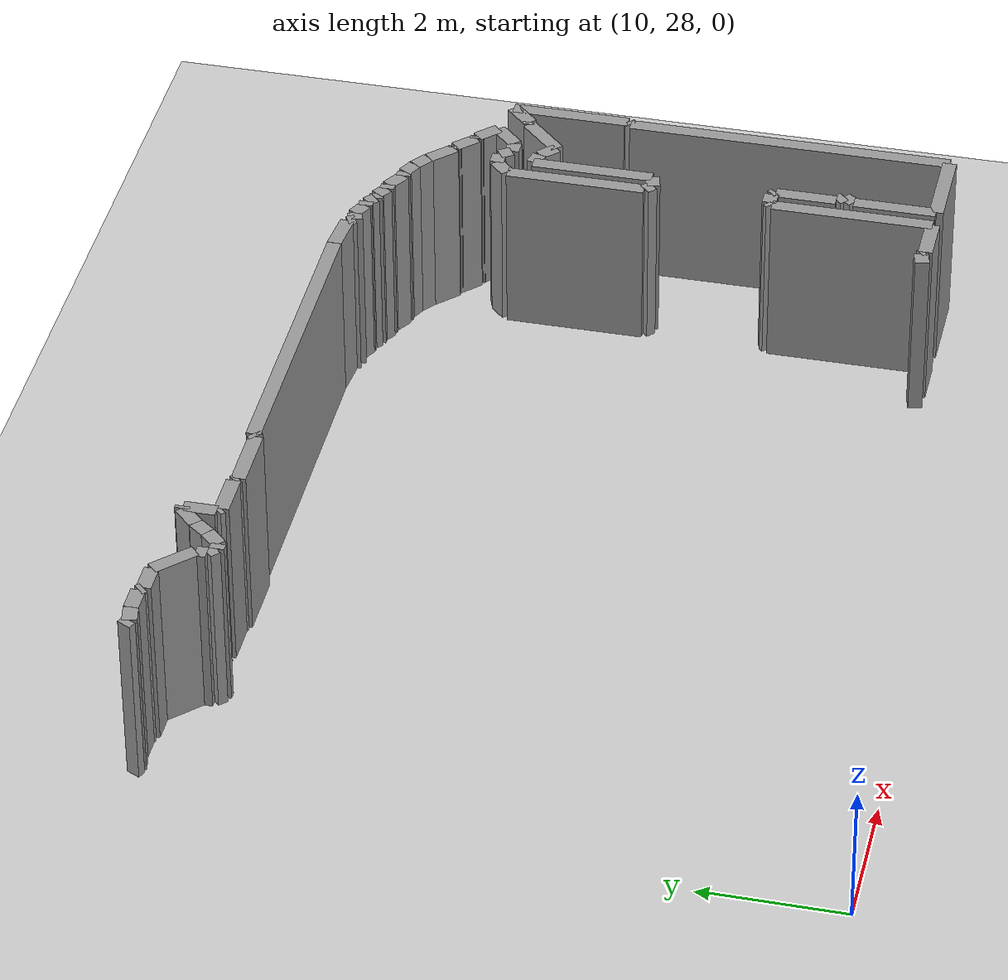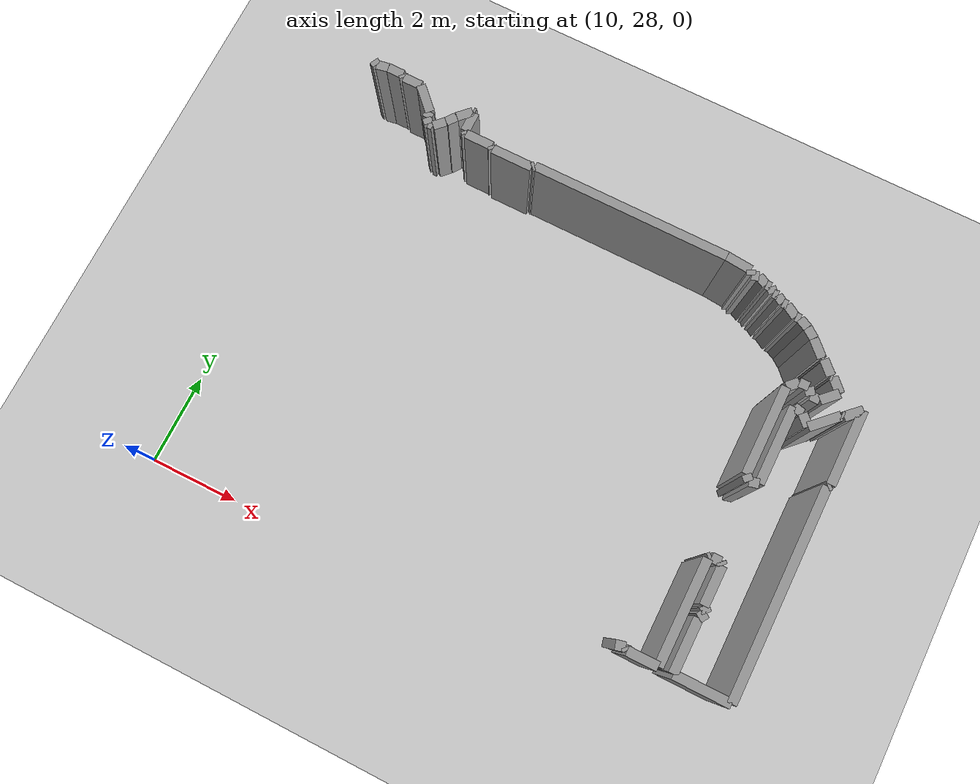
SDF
<sdf version="1.4">
 <world name="1_wall">
  <model name="ground_plane">
   <static>1</static>
   <link name="link">
    <collision name="collision">
     <geometry><plane><normal>0 0 1</normal><size>1000 1000</size></plane></geometry>
     <surface><friction><ode><mu>100</mu><mu2>50</mu2></ode></friction></surface>
    </collision>
    <visual name="visual">
     <cast_shadows>0</cast_shadows>
     <geometry><plane><normal>0 0 1</normal><size>10000 10000</size></plane></geometry>
     <material>
      <script><uri>file://media/materials/scripts/gazebo.material</uri><name>Gazebo/Grey</name></script>
     </material>
    </visual>
    <velocity_decay><linear>0</linear><angular>0</angular></velocity_decay>
   </link>
  </model>
  <model name="Wall_265">
   <static>1</static>
   <link name="Wall_265">
    <collision name="Wall_Collision_265">
     <geometry><box><size>0.11180339887499106 0.2 2.5</size></box></geometry>
     <pose>0 0 1.25 0 -0 0</pose>
    </collision>
    <visual name="Wall_Visual_265">
     <pose>0 0 1.25 0 -0 0</pose>
     <geometry><box><size>0.11180339887499106 0.2 2.5</size></box></geometry>
     <material>
      <script><uri>file://media/materials/scripts/gazebo.material</uri><name>Gazebo/Grey</name></script>
     </material>
    </visual>
    <velocity_decay><linear>0</linear><angular>0</angular></velocity_decay>
    <pose>10.7 37.425 0 0 0 -0.4636476090008416</pose>
   </link>
  </model>
  <model name="Wall_266">
   <static>1</static>
   <link name="Wall_266">
    <collision name="Wall_Collision_266">
     <geometry><box><size>0.2549509756796401 0.2 2.5</size></box></geometry>
     <pose>0 0 1.25 0 -0 0</pose>
    </collision>
    <visual name="Wall_Visual_266">
     <pose>0 0 1.25 0 -0 0</pose>
     <geometry><box><size>0.2549509756796401 0.2 2.5</size></box></geometry>
     <material>
      <script><uri>file://media/materials/scripts/gazebo.material</uri><name>Gazebo/Grey</name></script>
     </material>
    </visual>
    <velocity_decay><linear>0</linear><angular>0</angular></velocity_decay>
    <pose>10.875 37.425 0 0 0 0.19739555984989715</pose>
   </link>
  </model>
  <model name="Wall_267">
   <static>1</static>
   <link name="Wall_267">
    <collision name="Wall_Collision_267">
     <geometry><box><size>0.3500000000000014 0.2 2.5</size></box></geometry>
     <pose>0 0 1.25 0 -0 0</pose>
    </collision>
    <visual name="Wall_Visual_267">
     <pose>0 0 1.25 0 -0 0</pose>
     <geometry><box><size>0.3500000000000014 0.2 2.5</size></box></geometry>
     <material>
      <script><uri>file://media/materials/scripts/gazebo.material</uri><name>Gazebo/Grey</name></script>
     </material>
    </visual>
    <velocity_decay><linear>0</linear><angular>0</angular></velocity_decay>
    <pose>11.175 37.45 0 0 0 0.0</pose>
   </link>
  </model>
  <model name="Wall_268">
   <static>1</static>
   <link name="Wall_268">
    <collision name="Wall_Collision_268">
     <geometry><box><size>0.07071067811865701 0.2 2.5</size></box></geometry>
     <pose>0 0 1.25 0 -0 0</pose>
    </collision>
    <visual name="Wall_Visual_268">
     <pose>0 0 1.25 0 -0 0</pose>
     <geometry><box><size>0.07071067811865701 0.2 2.5</size></box></geometry>
     <material>
      <script><uri>file://media/materials/scripts/gazebo.material</uri><name>Gazebo/Grey</name></script>
     </material>
    </visual>
    <velocity_decay><linear>0</linear><angular>0</angular></velocity_decay>
    <pose>11.375 37.425 0 0 0 -0.7853981633975016</pose>
   </link>
  </model>
  <model name="Wall_269">
   <static>1</static>
   <link name="Wall_269">
    <collision name="Wall_Collision_269">
     <geometry><box><size>0.40000000000000036 0.2 2.5</size></box></geometry>
     <pose>0 0 1.25 0 -0 0</pose>
    </collision>
    <visual name="Wall_Visual_269">
     <pose>0 0 1.25 0 -0 0</pose>
     <geometry><box><size>0.40000000000000036 0.2 2.5</size></box></geometry>
     <material>
      <script><uri>file://media/materials/scripts/gazebo.material</uri><name>Gazebo/Grey</name></script>
     </material>
    </visual>
    <velocity_decay><linear>0</linear><angular>0</angular></velocity_decay>
    <pose>11.600000000000001 37.4 0 0 0 0.0</pose>
   </link>
  </model>
  <model name="Wall_270">
   <static>1</static>
   <link name="Wall_270">
    <collision name="Wall_Collision_270">
     <geometry><box><size>0.6363961030678892 0.2 2.5</size></box></geometry>
     <pose>0 0 1.25 0 -0 0</pose>
    </collision>
    <visual name="Wall_Visual_270">
     <pose>0 0 1.25 0 -0 0</pose>
     <geometry><box><size>0.6363961030678892 0.2 2.5</size></box></geometry>
     <material>
      <script><uri>file://media/materials/scripts/gazebo.material</uri><name>Gazebo/Grey</name></script>
     </material>
    </visual>
    <velocity_decay><linear>0</linear><angular>0</angular></velocity_decay>
    <pose>12.025 37.175 0 0 0 -0.7853981633974444</pose>
   </link>
  </model>
  <model name="Wall_271">
   <static>1</static>
   <link name="Wall_271">
    <collision name="Wall_Collision_271">
     <geometry><box><size>0.14999999999999858 0.2 2.5</size></box></geometry>
     <pose>0 0 1.25 0 -0 0</pose>
    </collision>
    <visual name="Wall_Visual_271">
     <pose>0 0 1.25 0 -0 0</pose>
     <geometry><box><size>0.14999999999999858 0.2 2.5</size></box></geometry>
     <material>
      <script><uri>file://media/materials/scripts/gazebo.material</uri><name>Gazebo/Grey</name></script>
     </material>
    </visual>
    <velocity_decay><linear>0</linear><angular>0</angular></velocity_decay>
    <pose>12.25 36.875 0 0 0 -1.5707963267948966</pose>
   </link>
  </model>
  <model name="Wall_272">
   <static>1</static>
   <link name="Wall_272">
    <collision name="Wall_Collision_272">
     <geometry><box><size>0.14142135623731153 0.2 2.5</size></box></geometry>
     <pose>0 0 1.25 0 -0 0</pose>
    </collision>
    <visual name="Wall_Visual_272">
     <pose>0 0 1.25 0 -0 0</pose>
     <geometry><box><size>0.14142135623731153 0.2 2.5</size></box></geometry>
     <material>
      <script><uri>file://media/materials/scripts/gazebo.material</uri><name>Gazebo/Grey</name></script>
     </material>
    </visual>
    <velocity_decay><linear>0</linear><angular>0</angular></velocity_decay>
    <pose>12.3 36.75 0 0 0 -0.7853981633974483</pose>
   </link>
  </model>
  <model name="Wall_273">
   <static>1</static>
   <link name="Wall_273">
    <collision name="Wall_Collision_273">
     <geometry><box><size>0.09999999999999964 0.2 2.5</size></box></geometry>
     <pose>0 0 1.25 0 -0 0</pose>
    </collision>
    <visual name="Wall_Visual_273">
     <pose>0 0 1.25 0 -0 0</pose>
     <geometry><box><size>0.09999999999999964 0.2 2.5</size></box></geometry>
     <material>
      <script><uri>file://media/materials/scripts/gazebo.material</uri><name>Gazebo/Grey</name></script>
     </material>
    </visual>
    <velocity_decay><linear>0</linear><angular>0</angular></velocity_decay>
    <pose>12.400000000000002 36.7 0 0 0 0.0</pose>
   </link>
  </model>
  <model name="Wall_274">
   <static>1</static>
   <link name="Wall_274">
    <collision name="Wall_Collision_274">
     <geometry><box><size>0.2828427124746155 0.2 2.5</size></box></geometry>
     <pose>0 0 1.25 0 -0 0</pose>
    </collision>
    <visual name="Wall_Visual_274">
     <pose>0 0 1.25 0 -0 0</pose>
     <geometry><box><size>0.2828427124746155 0.2 2.5</size></box></geometry>
     <material>
      <script><uri>file://media/materials/scripts/gazebo.material</uri><name>Gazebo/Grey</name></script>
     </material>
    </visual>
    <velocity_decay><linear>0</linear><angular>0</angular></velocity_decay>
    <pose>12.55 36.8 0 0 0 0.7853981633974394</pose>
   </link>
  </model>
  <model name="Wall_275">
   <static>1</static>
   <link name="Wall_275">
    <collision name="Wall_Collision_275">
     <geometry><box><size>0.2500000000000025 0.2 2.5</size></box></geometry>
     <pose>0 0 1.25 0 -0 0</pose>
    </collision>
    <visual name="Wall_Visual_275">
     <pose>0 0 1.25 0 -0 0</pose>
     <geometry><box><size>0.2500000000000025 0.2 2.5</size></box></geometry>
     <material>
      <script><uri>file://media/materials/scripts/gazebo.material</uri><name>Gazebo/Grey</name></script>
     </material>
    </visual>
    <velocity_decay><linear>0</linear><angular>0</angular></velocity_decay>
    <pose>12.725000000000001 37.0 0 0 0 0.927295218001618</pose>
   </link>
  </model>
  <model name="Wall_276">
   <static>1</static>
   <link name="Wall_276">
    <collision name="Wall_Collision_276">
     <geometry><box><size>0.3535533905932738 0.2 2.5</size></box></geometry>
     <pose>0 0 1.25 0 -0 0</pose>
    </collision>
    <visual name="Wall_Visual_276">
     <pose>0 0 1.25 0 -0 0</pose>
     <geometry><box><size>0.3535533905932738 0.2 2.5</size></box></geometry>
     <material>
      <script><uri>file://media/materials/scripts/gazebo.material</uri><name>Gazebo/Grey</name></script>
     </material>
    </visual>
    <velocity_decay><linear>0</linear><angular>0</angular></velocity_decay>
    <pose>12.925 37.225 0 0 0 0.7853981633974483</pose>
   </link>
  </model>
  <model name="Wall_277">
   <static>1</static>
   <link name="Wall_277">
    <collision name="Wall_Collision_277">
     <geometry><box><size>0.05000000000000071 0.2 2.5</size></box></geometry>
     <pose>0 0 1.25 0 -0 0</pose>
    </collision>
    <visual name="Wall_Visual_277">
     <pose>0 0 1.25 0 -0 0</pose>
     <geometry><box><size>0.05000000000000071 0.2 2.5</size></box></geometry>
     <material>
      <script><uri>file://media/materials/scripts/gazebo.material</uri><name>Gazebo/Grey</name></script>
     </material>
    </visual>
    <velocity_decay><linear>0</linear><angular>0</angular></velocity_decay>
    <pose>13.075000000000001 37.35 0 0 0 0.0</pose>
   </link>
  </model>
  <model name="Wall_278">
   <static>1</static>
   <link name="Wall_278">
    <collision name="Wall_Collision_278">
     <geometry><box><size>0.45000000000000284 0.2 2.5</size></box></geometry>
     <pose>0 0 1.25 0 -0 0</pose>
    </collision>
    <visual name="Wall_Visual_278">
     <pose>0 0 1.25 0 -0 0</pose>
     <geometry><box><size>0.45000000000000284 0.2 2.5</size></box></geometry>
     <material>
      <script><uri>file://media/materials/scripts/gazebo.material</uri><name>Gazebo/Grey</name></script>
     </material>
    </visual>
    <velocity_decay><linear>0</linear><angular>0</angular></velocity_decay>
    <pose>13.100000000000001 37.125 0 0 0 -1.5707963267948966</pose>
   </link>
  </model>
  <model name="Wall_279">
   <static>1</static>
   <link name="Wall_279">
    <collision name="Wall_Collision_279">
     <geometry><box><size>0.07071067811865199 0.2 2.5</size></box></geometry>
     <pose>0 0 1.25 0 -0 0</pose>
    </collision>
    <visual name="Wall_Visual_279">
     <pose>0 0 1.25 0 -0 0</pose>
     <geometry><box><size>0.07071067811865199 0.2 2.5</size></box></geometry>
     <material>
      <script><uri>file://media/materials/scripts/gazebo.material</uri><name>Gazebo/Grey</name></script>
     </material>
    </visual>
    <velocity_decay><linear>0</linear><angular>0</angular></velocity_decay>
    <pose>13.125 36.875 0 0 0 -0.7853981633974305</pose>
   </link>
  </model>
  <model name="Wall_280">
   <static>1</static>
   <link name="Wall_280">
    <collision name="Wall_Collision_280">
     <geometry><box><size>0.5999999999999996 0.2 2.5</size></box></geometry>
     <pose>0 0 1.25 0 -0 0</pose>
    </collision>
    <visual name="Wall_Visual_280">
     <pose>0 0 1.25 0 -0 0</pose>
     <geometry><box><size>0.5999999999999996 0.2 2.5</size></box></geometry>
     <material>
      <script><uri>file://media/materials/scripts/gazebo.material</uri><name>Gazebo/Grey</name></script>
     </material>
    </visual>
    <velocity_decay><linear>0</linear><angular>0</angular></velocity_decay>
    <pose>13.45 36.85 0 0 0 0.0</pose>
   </link>
  </model>
  <model name="Wall_281">
   <static>1</static>
   <link name="Wall_281">
    <collision name="Wall_Collision_281">
     <geometry><box><size>0.07071067811865325 0.2 2.5</size></box></geometry>
     <pose>0 0 1.25 0 -0 0</pose>
    </collision>
    <visual name="Wall_Visual_281">
     <pose>0 0 1.25 0 -0 0</pose>
     <geometry><box><size>0.07071067811865325 0.2 2.5</size></box></geometry>
     <material>
      <script><uri>file://media/materials/scripts/gazebo.material</uri><name>Gazebo/Grey</name></script>
     </material>
    </visual>
    <velocity_decay><linear>0</linear><angular>0</angular></velocity_decay>
    <pose>13.775 36.825 0 0 0 -0.7853981633974128</pose>
   </link>
  </model>
  <model name="Wall_282">
   <static>1</static>
   <link name="Wall_282">
    <collision name="Wall_Collision_282">
     <geometry><box><size>0.9000000000000004 0.2 2.5</size></box></geometry>
     <pose>0 0 1.25 0 -0 0</pose>
    </collision>
    <visual name="Wall_Visual_282">
     <pose>0 0 1.25 0 -0 0</pose>
     <geometry><box><size>0.9000000000000004 0.2 2.5</size></box></geometry>
     <material>
      <script><uri>file://media/materials/scripts/gazebo.material</uri><name>Gazebo/Grey</name></script>
     </material>
    </visual>
    <velocity_decay><linear>0</linear><angular>0</angular></velocity_decay>
    <pose>14.25 36.800000000000004 0 0 0 0.0</pose>
   </link>
  </model>
  <model name="Wall_283">
   <static>1</static>
   <link name="Wall_283">
    <collision name="Wall_Collision_283">
     <geometry><box><size>0.07071067811865199 0.2 2.5</size></box></geometry>
     <pose>0 0 1.25 0 -0 0</pose>
    </collision>
    <visual name="Wall_Visual_283">
     <pose>0 0 1.25 0 -0 0</pose>
     <geometry><box><size>0.07071067811865199 0.2 2.5</size></box></geometry>
     <material>
      <script><uri>file://media/materials/scripts/gazebo.material</uri><name>Gazebo/Grey</name></script>
     </material>
    </visual>
    <velocity_decay><linear>0</linear><angular>0</angular></velocity_decay>
    <pose>14.725000000000001 36.825 0 0 0 0.7853981633974305</pose>
   </link>
  </model>
  <model name="Wall_284">
   <static>1</static>
   <link name="Wall_284">
    <collision name="Wall_Collision_284">
     <geometry><box><size>4.350000000000001 0.2 2.5</size></box></geometry>
     <pose>0 0 1.25 0 -0 0</pose>
    </collision>
    <visual name="Wall_Visual_284">
     <pose>0 0 1.25 0 -0 0</pose>
     <geometry><box><size>4.350000000000001 0.2 2.5</size></box></geometry>
     <material>
      <script><uri>file://media/materials/scripts/gazebo.material</uri><name>Gazebo/Grey</name></script>
     </material>
    </visual>
    <velocity_decay><linear>0</linear><angular>0</angular></velocity_decay>
    <pose>16.925 36.85 0 0 0 0.0</pose>
   </link>
  </model>
  <model name="Wall_285">
   <static>1</static>
   <link name="Wall_285">
    <collision name="Wall_Collision_285">
     <geometry><box><size>0.5522680508593635 0.2 2.5</size></box></geometry>
     <pose>0 0 1.25 0 -0 0</pose>
    </collision>
    <visual name="Wall_Visual_285">
     <pose>0 0 1.25 0 -0 0</pose>
     <geometry><box><size>0.5522680508593635 0.2 2.5</size></box></geometry>
     <material>
      <script><uri>file://media/materials/scripts/gazebo.material</uri><name>Gazebo/Grey</name></script>
     </material>
    </visual>
    <velocity_decay><linear>0</linear><angular>0</angular></velocity_decay>
    <pose>19.375 36.825 0 0 0 -0.09065988720073988</pose>
   </link>
  </model>
  <model name="Wall_286">
   <static>1</static>
   <link name="Wall_286">
    <collision name="Wall_Collision_286">
     <geometry><box><size>0.11180339887499108 0.2 2.5</size></box></geometry>
     <pose>0 0 1.25 0 -0 0</pose>
    </collision>
    <visual name="Wall_Visual_286">
     <pose>0 0 1.25 0 -0 0</pose>
     <geometry><box><size>0.11180339887499108 0.2 2.5</size></box></geometry>
     <material>
      <script><uri>file://media/materials/scripts/gazebo.material</uri><name>Gazebo/Grey</name></script>
     </material>
    </visual>
    <velocity_decay><linear>0</linear><angular>0</angular></velocity_decay>
    <pose>19.675000000000004 36.75 0 0 0 -1.1071487177940904</pose>
   </link>
  </model>
  <model name="Wall_287">
   <static>1</static>
   <link name="Wall_287">
    <collision name="Wall_Collision_287">
     <geometry><box><size>0.15811388300841672 0.2 2.5</size></box></geometry>
     <pose>0 0 1.25 0 -0 0</pose>
    </collision>
    <visual name="Wall_Visual_287">
     <pose>0 0 1.25 0 -0 0</pose>
     <geometry><box><size>0.15811388300841672 0.2 2.5</size></box></geometry>
     <material>
      <script><uri>file://media/materials/scripts/gazebo.material</uri><name>Gazebo/Grey</name></script>
     </material>
    </visual>
    <velocity_decay><linear>0</linear><angular>0</angular></velocity_decay>
    <pose>19.775000000000002 36.725 0 0 0 0.321750554396628</pose>
   </link>
  </model>
  <model name="Wall_288">
   <static>1</static>
   <link name="Wall_288">
    <collision name="Wall_Collision_288">
     <geometry><box><size>0.22360679774997896 0.2 2.5</size></box></geometry>
     <pose>0 0 1.25 0 -0 0</pose>
    </collision>
    <visual name="Wall_Visual_288">
     <pose>0 0 1.25 0 -0 0</pose>
     <geometry><box><size>0.22360679774997896 0.2 2.5</size></box></geometry>
     <material>
      <script><uri>file://media/materials/scripts/gazebo.material</uri><name>Gazebo/Grey</name></script>
     </material>
    </visual>
    <velocity_decay><linear>0</linear><angular>0</angular></velocity_decay>
    <pose>19.950000000000003 36.7 0 0 0 -0.4636476090008132</pose>
   </link>
  </model>
  <model name="Wall_289">
   <static>1</static>
   <link name="Wall_289">
    <collision name="Wall_Collision_289">
     <geometry><box><size>0.10000000000000142 0.2 2.5</size></box></geometry>
     <pose>0 0 1.25 0 -0 0</pose>
    </collision>
    <visual name="Wall_Visual_289">
     <pose>0 0 1.25 0 -0 0</pose>
     <geometry><box><size>0.10000000000000142 0.2 2.5</size></box></geometry>
     <material>
      <script><uri>file://media/materials/scripts/gazebo.material</uri><name>Gazebo/Grey</name></script>
     </material>
    </visual>
    <velocity_decay><linear>0</linear><angular>0</angular></velocity_decay>
    <pose>20.1 36.65 0 0 0 0.0</pose>
   </link>
  </model>
  <model name="Wall_290">
   <static>1</static>
   <link name="Wall_290">
    <collision name="Wall_Collision_290">
     <geometry><box><size>0.14142135623730398 0.2 2.5</size></box></geometry>
     <pose>0 0 1.25 0 -0 0</pose>
    </collision>
    <visual name="Wall_Visual_290">
     <pose>0 0 1.25 0 -0 0</pose>
     <geometry><box><size>0.14142135623730398 0.2 2.5</size></box></geometry>
     <material>
      <script><uri>file://media/materials/scripts/gazebo.material</uri><name>Gazebo/Grey</name></script>
     </material>
    </visual>
    <velocity_decay><linear>0</linear><angular>0</angular></velocity_decay>
    <pose>20.200000000000003 36.6 0 0 0 -0.7853981633974305</pose>
   </link>
  </model>
  <model name="Wall_291">
   <static>1</static>
   <link name="Wall_291">
    <collision name="Wall_Collision_291">
     <geometry><box><size>0.10000000000000142 0.2 2.5</size></box></geometry>
     <pose>0 0 1.25 0 -0 0</pose>
    </collision>
    <visual name="Wall_Visual_291">
     <pose>0 0 1.25 0 -0 0</pose>
     <geometry><box><size>0.10000000000000142 0.2 2.5</size></box></geometry>
     <material>
      <script><uri>file://media/materials/scripts/gazebo.material</uri><name>Gazebo/Grey</name></script>
     </material>
    </visual>
    <velocity_decay><linear>0</linear><angular>0</angular></velocity_decay>
    <pose>20.3 36.550000000000004 0 0 0 0.0</pose>
   </link>
  </model>
  <model name="Wall_292">
   <static>1</static>
   <link name="Wall_292">
    <collision name="Wall_Collision_292">
     <geometry><box><size>0.18027756377319906 0.2 2.5</size></box></geometry>
     <pose>0 0 1.25 0 -0 0</pose>
    </collision>
    <visual name="Wall_Visual_292">
     <pose>0 0 1.25 0 -0 0</pose>
     <geometry><box><size>0.18027756377319906 0.2 2.5</size></box></geometry>
     <material>
      <script><uri>file://media/materials/scripts/gazebo.material</uri><name>Gazebo/Grey</name></script>
     </material>
    </visual>
    <velocity_decay><linear>0</linear><angular>0</angular></velocity_decay>
    <pose>20.425 36.5 0 0 0 -0.5880026035475785</pose>
   </link>
  </model>
  <model name="Wall_293">
   <static>1</static>
   <link name="Wall_293">
    <collision name="Wall_Collision_293">
     <geometry><box><size>0.10000000000000142 0.2 2.5</size></box></geometry>
     <pose>0 0 1.25 0 -0 0</pose>
    </collision>
    <visual name="Wall_Visual_293">
     <pose>0 0 1.25 0 -0 0</pose>
     <geometry><box><size>0.10000000000000142 0.2 2.5</size></box></geometry>
     <material>
      <script><uri>file://media/materials/scripts/gazebo.material</uri><name>Gazebo/Grey</name></script>
     </material>
    </visual>
    <velocity_decay><linear>0</linear><angular>0</angular></velocity_decay>
    <pose>20.55 36.45 0 0 0 0.0</pose>
   </link>
  </model>
  <model name="Wall_294">
   <static>1</static>
   <link name="Wall_294">
    <collision name="Wall_Collision_294">
     <geometry><box><size>0.29154759474226427 0.2 2.5</size></box></geometry>
     <pose>0 0 1.25 0 -0 0</pose>
    </collision>
    <visual name="Wall_Visual_294">
     <pose>0 0 1.25 0 -0 0</pose>
     <geometry><box><size>0.29154759474226427 0.2 2.5</size></box></geometry>
     <material>
      <script><uri>file://media/materials/scripts/gazebo.material</uri><name>Gazebo/Grey</name></script>
     </material>
    </visual>
    <velocity_decay><linear>0</linear><angular>0</angular></velocity_decay>
    <pose>20.725 36.375 0 0 0 -0.5404195002705799</pose>
   </link>
  </model>
  <model name="Wall_295">
   <static>1</static>
   <link name="Wall_295">
    <collision name="Wall_Collision_295">
     <geometry><box><size>0.10000000000000142 0.2 2.5</size></box></geometry>
     <pose>0 0 1.25 0 -0 0</pose>
    </collision>
    <visual name="Wall_Visual_295">
     <pose>0 0 1.25 0 -0 0</pose>
     <geometry><box><size>0.10000000000000142 0.2 2.5</size></box></geometry>
     <material>
      <script><uri>file://media/materials/scripts/gazebo.material</uri><name>Gazebo/Grey</name></script>
     </material>
    </visual>
    <velocity_decay><linear>0</linear><angular>0</angular></velocity_decay>
    <pose>20.900000000000002 36.300000000000004 0 0 0 0.0</pose>
   </link>
  </model>
  <model name="Wall_296">
   <static>1</static>
   <link name="Wall_296">
    <collision name="Wall_Collision_296">
     <geometry><box><size>0.22360679774997896 0.2 2.5</size></box></geometry>
     <pose>0 0 1.25 0 -0 0</pose>
    </collision>
    <visual name="Wall_Visual_296">
     <pose>0 0 1.25 0 -0 0</pose>
     <geometry><box><size>0.22360679774997896 0.2 2.5</size></box></geometry>
     <material>
      <script><uri>file://media/materials/scripts/gazebo.material</uri><name>Gazebo/Grey</name></script>
     </material>
    </visual>
    <velocity_decay><linear>0</linear><angular>0</angular></velocity_decay>
    <pose>21.050000000000004 36.25 0 0 0 -0.4636476090008132</pose>
   </link>
  </model>
  <model name="Wall_297">
   <static>1</static>
   <link name="Wall_297">
    <collision name="Wall_Collision_297">
     <geometry><box><size>0.24999999999999858 0.2 2.5</size></box></geometry>
     <pose>0 0 1.25 0 -0 0</pose>
    </collision>
    <visual name="Wall_Visual_297">
     <pose>0 0 1.25 0 -0 0</pose>
     <geometry><box><size>0.24999999999999858 0.2 2.5</size></box></geometry>
     <material>
      <script><uri>file://media/materials/scripts/gazebo.material</uri><name>Gazebo/Grey</name></script>
     </material>
    </visual>
    <velocity_decay><linear>0</linear><angular>0</angular></velocity_decay>
    <pose>21.25 36.125 0 0 0 -0.6435011087932816</pose>
   </link>
  </model>
  <model name="Wall_298">
   <static>1</static>
   <link name="Wall_298">
    <collision name="Wall_Collision_298">
     <geometry><box><size>0.42426406871193206 0.2 2.5</size></box></geometry>
     <pose>0 0 1.25 0 -0 0</pose>
    </collision>
    <visual name="Wall_Visual_298">
     <pose>0 0 1.25 0 -0 0</pose>
     <geometry><box><size>0.42426406871193206 0.2 2.5</size></box></geometry>
     <material>
      <script><uri>file://media/materials/scripts/gazebo.material</uri><name>Gazebo/Grey</name></script>
     </material>
    </visual>
    <velocity_decay><linear>0</linear><angular>0</angular></velocity_decay>
    <pose>21.5 35.900000000000006 0 0 0 -0.7853981633974543</pose>
   </link>
  </model>
  <model name="Wall_299">
   <static>1</static>
   <link name="Wall_299">
    <collision name="Wall_Collision_299">
     <geometry><box><size>0.05000000000000071 0.2 2.5</size></box></geometry>
     <pose>0 0 1.25 0 -0 0</pose>
    </collision>
    <visual name="Wall_Visual_299">
     <pose>0 0 1.25 0 -0 0</pose>
     <geometry><box><size>0.05000000000000071 0.2 2.5</size></box></geometry>
     <material>
      <script><uri>file://media/materials/scripts/gazebo.material</uri><name>Gazebo/Grey</name></script>
     </material>
    </visual>
    <velocity_decay><linear>0</linear><angular>0</angular></velocity_decay>
    <pose>21.675000000000004 35.75 0 0 0 0.0</pose>
   </link>
  </model>
  <model name="Wall_300">
   <static>1</static>
   <link name="Wall_300">
    <collision name="Wall_Collision_300">
     <geometry><box><size>0.3535533905932738 0.2 2.5</size></box></geometry>
     <pose>0 0 1.25 0 -0 0</pose>
    </collision>
    <visual name="Wall_Visual_300">
     <pose>0 0 1.25 0 -0 0</pose>
     <geometry><box><size>0.3535533905932738 0.2 2.5</size></box></geometry>
     <material>
      <script><uri>file://media/materials/scripts/gazebo.material</uri><name>Gazebo/Grey</name></script>
     </material>
    </visual>
    <velocity_decay><linear>0</linear><angular>0</angular></velocity_decay>
    <pose>21.825000000000003 35.625 0 0 0 -0.7853981633974483</pose>
   </link>
  </model>
  <model name="Wall_301">
   <static>1</static>
   <link name="Wall_301">
    <collision name="Wall_Collision_301">
     <geometry><box><size>0.04999999999999716 0.2 2.5</size></box></geometry>
     <pose>0 0 1.25 0 -0 0</pose>
    </collision>
    <visual name="Wall_Visual_301">
     <pose>0 0 1.25 0 -0 0</pose>
     <geometry><box><size>0.04999999999999716 0.2 2.5</size></box></geometry>
     <material>
      <script><uri>file://media/materials/scripts/gazebo.material</uri><name>Gazebo/Grey</name></script>
     </material>
    </visual>
    <velocity_decay><linear>0</linear><angular>0</angular></velocity_decay>
    <pose>21.975 35.5 0 0 0 0.0</pose>
   </link>
  </model>
  <model name="Wall_302">
   <static>1</static>
   <link name="Wall_302">
    <collision name="Wall_Collision_302">
     <geometry><box><size>0.3535533905932738 0.2 2.5</size></box></geometry>
     <pose>0 0 1.25 0 -0 0</pose>
    </collision>
    <visual name="Wall_Visual_302">
     <pose>0 0 1.25 0 -0 0</pose>
     <geometry><box><size>0.3535533905932738 0.2 2.5</size></box></geometry>
     <material>
      <script><uri>file://media/materials/scripts/gazebo.material</uri><name>Gazebo/Grey</name></script>
     </material>
    </visual>
    <velocity_decay><linear>0</linear><angular>0</angular></velocity_decay>
    <pose>22.125 35.375 0 0 0 -0.7853981633974483</pose>
   </link>
  </model>
  <model name="Wall_303">
   <static>1</static>
   <link name="Wall_303">
    <collision name="Wall_Collision_303">
     <geometry><box><size>0.42426406871192446 0.2 2.5</size></box></geometry>
     <pose>0 0 1.25 0 -0 0</pose>
    </collision>
    <visual name="Wall_Visual_303">
     <pose>0 0 1.25 0 -0 0</pose>
     <geometry><box><size>0.42426406871192446 0.2 2.5</size></box></geometry>
     <material>
      <script><uri>file://media/materials/scripts/gazebo.material</uri><name>Gazebo/Grey</name></script>
     </material>
    </visual>
    <velocity_decay><linear>0</linear><angular>0</angular></velocity_decay>
    <pose>22.1 35.1 0 0 0 -2.356194490192345</pose>
   </link>
  </model>
  <model name="Wall_304">
   <static>1</static>
   <link name="Wall_304">
    <collision name="Wall_Collision_304">
     <geometry><box><size>0.20000000000000284 0.2 2.5</size></box></geometry>
     <pose>0 0 1.25 0 -0 0</pose>
    </collision>
    <visual name="Wall_Visual_304">
     <pose>0 0 1.25 0 -0 0</pose>
     <geometry><box><size>0.20000000000000284 0.2 2.5</size></box></geometry>
     <material>
      <script><uri>file://media/materials/scripts/gazebo.material</uri><name>Gazebo/Grey</name></script>
     </material>
    </visual>
    <velocity_decay><linear>0</linear><angular>0</angular></velocity_decay>
    <pose>21.85 34.95 0 0 0 3.141592653589793</pose>
   </link>
  </model>
  <model name="Wall_305">
   <static>1</static>
   <link name="Wall_305">
    <collision name="Wall_Collision_305">
     <geometry><box><size>0.1802775637731971 0.2 2.5</size></box></geometry>
     <pose>0 0 1.25 0 -0 0</pose>
    </collision>
    <visual name="Wall_Visual_305">
     <pose>0 0 1.25 0 -0 0</pose>
     <geometry><box><size>0.1802775637731971 0.2 2.5</size></box></geometry>
     <material>
      <script><uri>file://media/materials/scripts/gazebo.material</uri><name>Gazebo/Grey</name></script>
     </material>
    </visual>
    <velocity_decay><linear>0</linear><angular>0</angular></velocity_decay>
    <pose>21.700000000000003 35.025000000000006 0 0 0 2.1587989303424586</pose>
   </link>
  </model>
  <model name="Wall_306">
   <static>1</static>
   <link name="Wall_306">
    <collision name="Wall_Collision_306">
     <geometry><box><size>0.1999999999999993 0.2 2.5</size></box></geometry>
     <pose>0 0 1.25 0 -0 0</pose>
    </collision>
    <visual name="Wall_Visual_306">
     <pose>0 0 1.25 0 -0 0</pose>
     <geometry><box><size>0.1999999999999993 0.2 2.5</size></box></geometry>
     <material>
      <script><uri>file://media/materials/scripts/gazebo.material</uri><name>Gazebo/Grey</name></script>
     </material>
    </visual>
    <velocity_decay><linear>0</linear><angular>0</angular></velocity_decay>
    <pose>21.550000000000004 35.1 0 0 0 3.141592653589793</pose>
   </link>
  </model>
  <model name="Wall_307">
   <static>1</static>
   <link name="Wall_307">
    <collision name="Wall_Collision_307">
     <geometry><box><size>0.28284271247462306 0.2 2.5</size></box></geometry>
     <pose>0 0 1.25 0 -0 0</pose>
    </collision>
    <visual name="Wall_Visual_307">
     <pose>0 0 1.25 0 -0 0</pose>
     <geometry><box><size>0.28284271247462306 0.2 2.5</size></box></geometry>
     <material>
      <script><uri>file://media/materials/scripts/gazebo.material</uri><name>Gazebo/Grey</name></script>
     </material>
    </visual>
    <velocity_decay><linear>0</linear><angular>0</angular></velocity_decay>
    <pose>21.35 35.0 0 0 0 -2.356194490192345</pose>
   </link>
  </model>
  <model name="Wall_308">
   <static>1</static>
   <link name="Wall_308">
    <collision name="Wall_Collision_308">
     <geometry><box><size>1.9499999999999957 0.2 2.5</size></box></geometry>
     <pose>0 0 1.25 0 -0 0</pose>
    </collision>
    <visual name="Wall_Visual_308">
     <pose>0 0 1.25 0 -0 0</pose>
     <geometry><box><size>1.9499999999999957 0.2 2.5</size></box></geometry>
     <material>
      <script><uri>file://media/materials/scripts/gazebo.material</uri><name>Gazebo/Grey</name></script>
     </material>
    </visual>
    <velocity_decay><linear>0</linear><angular>0</angular></velocity_decay>
    <pose>21.25 33.925 0 0 0 -1.5707963267948966</pose>
   </link>
  </model>
  <model name="Wall_309">
   <static>1</static>
   <link name="Wall_309">
    <collision name="Wall_Collision_309">
     <geometry><box><size>0.14142135623731153 0.2 2.5</size></box></geometry>
     <pose>0 0 1.25 0 -0 0</pose>
    </collision>
    <visual name="Wall_Visual_309">
     <pose>0 0 1.25 0 -0 0</pose>
     <geometry><box><size>0.14142135623731153 0.2 2.5</size></box></geometry>
     <material>
      <script><uri>file://media/materials/scripts/gazebo.material</uri><name>Gazebo/Grey</name></script>
     </material>
    </visual>
    <velocity_decay><linear>0</linear><angular>0</angular></velocity_decay>
    <pose>21.3 32.900000000000006 0 0 0 -0.7853981633974483</pose>
   </link>
  </model>
  <model name="Wall_310">
   <static>1</static>
   <link name="Wall_310">
    <collision name="Wall_Collision_310">
     <geometry><box><size>0.20615528128088165 0.2 2.5</size></box></geometry>
     <pose>0 0 1.25 0 -0 0</pose>
    </collision>
    <visual name="Wall_Visual_310">
     <pose>0 0 1.25 0 -0 0</pose>
     <geometry><box><size>0.20615528128088165 0.2 2.5</size></box></geometry>
     <material>
      <script><uri>file://media/materials/scripts/gazebo.material</uri><name>Gazebo/Grey</name></script>
     </material>
    </visual>
    <velocity_decay><linear>0</linear><angular>0</angular></velocity_decay>
    <pose>21.450000000000003 32.875 0 0 0 0.24497866312685163</pose>
   </link>
  </model>
  <model name="Wall_311">
   <static>1</static>
   <link name="Wall_311">
    <collision name="Wall_Collision_311">
     <geometry><box><size>1.7000000000000028 0.2 2.5</size></box></geometry>
     <pose>0 0 1.25 0 -0 0</pose>
    </collision>
    <visual name="Wall_Visual_311">
     <pose>0 0 1.25 0 -0 0</pose>
     <geometry><box><size>1.7000000000000028 0.2 2.5</size></box></geometry>
     <material>
      <script><uri>file://media/materials/scripts/gazebo.material</uri><name>Gazebo/Grey</name></script>
     </material>
    </visual>
    <velocity_decay><linear>0</linear><angular>0</angular></velocity_decay>
    <pose>21.55 33.75 0 0 0 1.5707963267948966</pose>
   </link>
  </model>
  <model name="Wall_312">
   <static>1</static>
   <link name="Wall_312">
    <collision name="Wall_Collision_312">
     <geometry><box><size>0.20615528128088165 0.2 2.5</size></box></geometry>
     <pose>0 0 1.25 0 -0 0</pose>
    </collision>
    <visual name="Wall_Visual_312">
     <pose>0 0 1.25 0 -0 0</pose>
     <geometry><box><size>0.20615528128088165 0.2 2.5</size></box></geometry>
     <material>
      <script><uri>file://media/materials/scripts/gazebo.material</uri><name>Gazebo/Grey</name></script>
     </material>
    </visual>
    <velocity_decay><linear>0</linear><angular>0</angular></velocity_decay>
    <pose>21.65 34.575 0 0 0 -0.24497866312685163</pose>
   </link>
  </model>
  <model name="Wall_313">
   <static>1</static>
   <link name="Wall_313">
    <collision name="Wall_Collision_313">
     <geometry><box><size>0.28284271247462306 0.2 2.5</size></box></geometry>
     <pose>0 0 1.25 0 -0 0</pose>
    </collision>
    <visual name="Wall_Visual_313">
     <pose>0 0 1.25 0 -0 0</pose>
     <geometry><box><size>0.28284271247462306 0.2 2.5</size></box></geometry>
     <material>
      <script><uri>file://media/materials/scripts/gazebo.material</uri><name>Gazebo/Grey</name></script>
     </material>
    </visual>
    <velocity_decay><linear>0</linear><angular>0</angular></velocity_decay>
    <pose>21.85 34.45 0 0 0 -0.7853981633974483</pose>
   </link>
  </model>
  <model name="Wall_314">
   <static>1</static>
   <link name="Wall_314">
    <collision name="Wall_Collision_314">
     <geometry><box><size>0.7071067811865476 0.2 2.5</size></box></geometry>
     <pose>0 0 1.25 0 -0 0</pose>
    </collision>
    <visual name="Wall_Visual_314">
     <pose>0 0 1.25 0 -0 0</pose>
     <geometry><box><size>0.7071067811865476 0.2 2.5</size></box></geometry>
     <material>
      <script><uri>file://media/materials/scripts/gazebo.material</uri><name>Gazebo/Grey</name></script>
     </material>
    </visual>
    <velocity_decay><linear>0</linear><angular>0</angular></velocity_decay>
    <pose>22.200000000000003 34.6 0 0 0 0.7853981633974483</pose>
   </link>
  </model>
  <model name="Wall_315">
   <static>1</static>
   <link name="Wall_315">
    <collision name="Wall_Collision_315">
     <geometry><box><size>0.04999999999999716 0.2 2.5</size></box></geometry>
     <pose>0 0 1.25 0 -0 0</pose>
    </collision>
    <visual name="Wall_Visual_315">
     <pose>0 0 1.25 0 -0 0</pose>
     <geometry><box><size>0.04999999999999716 0.2 2.5</size></box></geometry>
     <material>
      <script><uri>file://media/materials/scripts/gazebo.material</uri><name>Gazebo/Grey</name></script>
     </material>
    </visual>
    <velocity_decay><linear>0</linear><angular>0</angular></velocity_decay>
    <pose>22.475 34.85 0 0 0 0.0</pose>
   </link>
  </model>
  <model name="Wall_316">
   <static>1</static>
   <link name="Wall_316">
    <collision name="Wall_Collision_316">
     <geometry><box><size>0.424264068711927 0.2 2.5</size></box></geometry>
     <pose>0 0 1.25 0 -0 0</pose>
    </collision>
    <visual name="Wall_Visual_316">
     <pose>0 0 1.25 0 -0 0</pose>
     <geometry><box><size>0.424264068711927 0.2 2.5</size></box></geometry>
     <material>
      <script><uri>file://media/materials/scripts/gazebo.material</uri><name>Gazebo/Grey</name></script>
     </material>
    </visual>
    <velocity_decay><linear>0</linear><angular>0</angular></velocity_decay>
    <pose>22.65 35.0 0 0 0 0.7853981633974424</pose>
   </link>
  </model>
  <model name="Wall_317">
   <static>1</static>
   <link name="Wall_317">
    <collision name="Wall_Collision_317">
     <geometry><box><size>1.6499999999999986 0.2 2.5</size></box></geometry>
     <pose>0 0 1.25 0 -0 0</pose>
    </collision>
    <visual name="Wall_Visual_317">
     <pose>0 0 1.25 0 -0 0</pose>
     <geometry><box><size>1.6499999999999986 0.2 2.5</size></box></geometry>
     <material>
      <script><uri>file://media/materials/scripts/gazebo.material</uri><name>Gazebo/Grey</name></script>
     </material>
    </visual>
    <velocity_decay><linear>0</linear><angular>0</angular></velocity_decay>
    <pose>22.8 34.325 0 0 0 -1.5707963267948966</pose>
   </link>
  </model>
  <model name="Wall_318">
   <static>1</static>
   <link name="Wall_318">
    <collision name="Wall_Collision_318">
     <geometry><box><size>0.07071067811865325 0.2 2.5</size></box></geometry>
     <pose>0 0 1.25 0 -0 0</pose>
    </collision>
    <visual name="Wall_Visual_318">
     <pose>0 0 1.25 0 -0 0</pose>
     <geometry><box><size>0.07071067811865325 0.2 2.5</size></box></geometry>
     <material>
      <script><uri>file://media/materials/scripts/gazebo.material</uri><name>Gazebo/Grey</name></script>
     </material>
    </visual>
    <velocity_decay><linear>0</linear><angular>0</angular></velocity_decay>
    <pose>22.775 33.475 0 0 0 -2.3561944901923804</pose>
   </link>
  </model>
  <model name="Wall_319">
   <static>1</static>
   <link name="Wall_319">
    <collision name="Wall_Collision_319">
     <geometry><box><size>4.550000000000001 0.2 2.5</size></box></geometry>
     <pose>0 0 1.25 0 -0 0</pose>
    </collision>
    <visual name="Wall_Visual_319">
     <pose>0 0 1.25 0 -0 0</pose>
     <geometry><box><size>4.550000000000001 0.2 2.5</size></box></geometry>
     <material>
      <script><uri>file://media/materials/scripts/gazebo.material</uri><name>Gazebo/Grey</name></script>
     </material>
    </visual>
    <velocity_decay><linear>0</linear><angular>0</angular></velocity_decay>
    <pose>22.75 31.175000000000004 0 0 0 -1.5707963267948966</pose>
   </link>
  </model>
  <model name="Wall_320">
   <static>1</static>
   <link name="Wall_320">
    <collision name="Wall_Collision_320">
     <geometry><box><size>1.1999999999999993 0.2 2.5</size></box></geometry>
     <pose>0 0 1.25 0 -0 0</pose>
    </collision>
    <visual name="Wall_Visual_320">
     <pose>0 0 1.25 0 -0 0</pose>
     <geometry><box><size>1.1999999999999993 0.2 2.5</size></box></geometry>
     <material>
      <script><uri>file://media/materials/scripts/gazebo.material</uri><name>Gazebo/Grey</name></script>
     </material>
    </visual>
    <velocity_decay><linear>0</linear><angular>0</angular></velocity_decay>
    <pose>22.15 28.900000000000002 0 0 0 3.141592653589793</pose>
   </link>
  </model>
  <model name="Wall_321">
   <static>1</static>
   <link name="Wall_321">
    <collision name="Wall_Collision_321">
     <geometry><box><size>1.1499999999999986 0.2 2.5</size></box></geometry>
     <pose>0 0 1.25 0 -0 0</pose>
    </collision>
    <visual name="Wall_Visual_321">
     <pose>0 0 1.25 0 -0 0</pose>
     <geometry><box><size>1.1499999999999986 0.2 2.5</size></box></geometry>
     <material>
      <script><uri>file://media/materials/scripts/gazebo.material</uri><name>Gazebo/Grey</name></script>
     </material>
    </visual>
    <velocity_decay><linear>0</linear><angular>0</angular></velocity_decay>
    <pose>21.55 29.475 0 0 0 1.5707963267948966</pose>
   </link>
  </model>
  <model name="Wall_322">
   <static>1</static>
   <link name="Wall_322">
    <collision name="Wall_Collision_322">
     <geometry><box><size>0.18027756377320203 0.2 2.5</size></box></geometry>
     <pose>0 0 1.25 0 -0 0</pose>
    </collision>
    <visual name="Wall_Visual_322">
     <pose>0 0 1.25 0 -0 0</pose>
     <geometry><box><size>0.18027756377320203 0.2 2.5</size></box></geometry>
     <material>
      <script><uri>file://media/materials/scripts/gazebo.material</uri><name>Gazebo/Grey</name></script>
     </material>
    </visual>
    <velocity_decay><linear>0</linear><angular>0</angular></velocity_decay>
    <pose>21.6 30.125 0 0 0 0.982793723247329</pose>
   </link>
  </model>
  <model name="Wall_323">
   <static>1</static>
   <link name="Wall_323">
    <collision name="Wall_Collision_323">
     <geometry><box><size>0.141421356237309 0.2 2.5</size></box></geometry>
     <pose>0 0 1.25 0 -0 0</pose>
    </collision>
    <visual name="Wall_Visual_323">
     <pose>0 0 1.25 0 -0 0</pose>
     <geometry><box><size>0.141421356237309 0.2 2.5</size></box></geometry>
     <material>
      <script><uri>file://media/materials/scripts/gazebo.material</uri><name>Gazebo/Grey</name></script>
     </material>
    </visual>
    <velocity_decay><linear>0</linear><angular>0</angular></velocity_decay>
    <pose>21.6 30.25 0 0 0 2.3561944901923626</pose>
   </link>
  </model>
  <model name="Wall_324">
   <static>1</static>
   <link name="Wall_324">
    <collision name="Wall_Collision_324">
     <geometry><box><size>0.8500000000000014 0.2 2.5</size></box></geometry>
     <pose>0 0 1.25 0 -0 0</pose>
    </collision>
    <visual name="Wall_Visual_324">
     <pose>0 0 1.25 0 -0 0</pose>
     <geometry><box><size>0.8500000000000014 0.2 2.5</size></box></geometry>
     <material>
      <script><uri>file://media/materials/scripts/gazebo.material</uri><name>Gazebo/Grey</name></script>
     </material>
    </visual>
    <velocity_decay><linear>0</linear><angular>0</angular></velocity_decay>
    <pose>21.55 30.725 0 0 0 1.5707963267948966</pose>
   </link>
  </model>
  <model name="Wall_325">
   <static>1</static>
   <link name="Wall_325">
    <collision name="Wall_Collision_325">
     <geometry><box><size>0.07071067811865576 0.2 2.5</size></box></geometry>
     <pose>0 0 1.25 0 -0 0</pose>
    </collision>
    <visual name="Wall_Visual_325">
     <pose>0 0 1.25 0 -0 0</pose>
     <geometry><box><size>0.07071067811865576 0.2 2.5</size></box></geometry>
     <material>
      <script><uri>file://media/materials/scripts/gazebo.material</uri><name>Gazebo/Grey</name></script>
     </material>
    </visual>
    <velocity_decay><linear>0</linear><angular>0</angular></velocity_decay>
    <pose>21.525 31.175000000000004 0 0 0 2.356194490192345</pose>
   </link>
  </model>
  <model name="Wall_326">
   <static>1</static>
   <link name="Wall_326">
    <collision name="Wall_Collision_326">
     <geometry><box><size>0.1999999999999993 0.2 2.5</size></box></geometry>
     <pose>0 0 1.25 0 -0 0</pose>
    </collision>
    <visual name="Wall_Visual_326">
     <pose>0 0 1.25 0 -0 0</pose>
     <geometry><box><size>0.1999999999999993 0.2 2.5</size></box></geometry>
     <material>
      <script><uri>file://media/materials/scripts/gazebo.material</uri><name>Gazebo/Grey</name></script>
     </material>
    </visual>
    <velocity_decay><linear>0</linear><angular>0</angular></velocity_decay>
    <pose>21.4 31.200000000000003 0 0 0 3.141592653589793</pose>
   </link>
  </model>
  <model name="Wall_327">
   <static>1</static>
   <link name="Wall_327">
    <collision name="Wall_Collision_327">
     <geometry><box><size>0.07071067811865576 0.2 2.5</size></box></geometry>
     <pose>0 0 1.25 0 -0 0</pose>
    </collision>
    <visual name="Wall_Visual_327">
     <pose>0 0 1.25 0 -0 0</pose>
     <geometry><box><size>0.07071067811865576 0.2 2.5</size></box></geometry>
     <material>
      <script><uri>file://media/materials/scripts/gazebo.material</uri><name>Gazebo/Grey</name></script>
     </material>
    </visual>
    <velocity_decay><linear>0</linear><angular>0</angular></velocity_decay>
    <pose>21.275 31.175000000000004 0 0 0 -2.356194490192345</pose>
   </link>
  </model>
  <model name="Wall_328">
   <static>1</static>
   <link name="Wall_328">
    <collision name="Wall_Collision_328">
     <geometry><box><size>2.25 0.2 2.5</size></box></geometry>
     <pose>0 0 1.25 0 -0 0</pose>
    </collision>
    <visual name="Wall_Visual_328">
     <pose>0 0 1.25 0 -0 0</pose>
     <geometry><box><size>2.25 0.2 2.5</size></box></geometry>
     <material>
      <script><uri>file://media/materials/scripts/gazebo.material</uri><name>Gazebo/Grey</name></script>
     </material>
    </visual>
    <velocity_decay><linear>0</linear><angular>0</angular></velocity_decay>
    <pose>21.25 30.025000000000002 0 0 0 -1.5707963267948966</pose>
   </link>
  </model>
  <model name="Wall_329">
   <static>1</static>
   <link name="Wall_329">
    <collision name="Wall_Collision_329">
     <geometry><box><size>0.6499999999999986 0.2 2.5</size></box></geometry>
     <pose>0 0 1.25 0 -0 0</pose>
    </collision>
    <visual name="Wall_Visual_329">
     <pose>0 0 1.25 0 -0 0</pose>
     <geometry><box><size>0.6499999999999986 0.2 2.5</size></box></geometry>
     <material>
      <script><uri>file://media/materials/scripts/gazebo.material</uri><name>Gazebo/Grey</name></script>
     </material>
    </visual>
    <velocity_decay><linear>0</linear><angular>0</angular></velocity_decay>
    <pose>20.925 28.900000000000002 0 0 0 3.141592653589793</pose>
   </link>
  </model>
  <model name="Wall_330">
   <static>1</static>
   <link name="Wall_330">
    <collision name="Wall_Collision_330">
     <geometry><box><size>0.07071067811865576 0.2 2.5</size></box></geometry>
     <pose>0 0 1.25 0 -0 0</pose>
    </collision>
    <visual name="Wall_Visual_330">
     <pose>0 0 1.25 0 -0 0</pose>
     <geometry><box><size>0.07071067811865576 0.2 2.5</size></box></geometry>
     <material>
      <script><uri>file://media/materials/scripts/gazebo.material</uri><name>Gazebo/Grey</name></script>
     </material>
    </visual>
    <velocity_decay><linear>0</linear><angular>0</angular></velocity_decay>
    <pose>20.575000000000003 28.925000000000004 0 0 0 2.356194490192345</pose>
   </link>
  </model>
  <model name="Wall_331">
   <static>1</static>
   <link name="Wall_331">
    <collision name="Wall_Collision_331">
     <geometry><box><size>0.2061552812808825 0.2 2.5</size></box></geometry>
     <pose>0 0 1.25 0 -0 0</pose>
    </collision>
    <visual name="Wall_Visual_331">
     <pose>0 0 1.25 0 -0 0</pose>
     <geometry><box><size>0.2061552812808825 0.2 2.5</size></box></geometry>
     <material>
      <script><uri>file://media/materials/scripts/gazebo.material</uri><name>Gazebo/Grey</name></script>
     </material>
    </visual>
    <velocity_decay><linear>0</linear><angular>0</angular></velocity_decay>
    <pose>20.450000000000003 28.925000000000004 0 0 0 -2.896613990462925</pose>
   </link>
  </model>
 </world>
</sdf>
